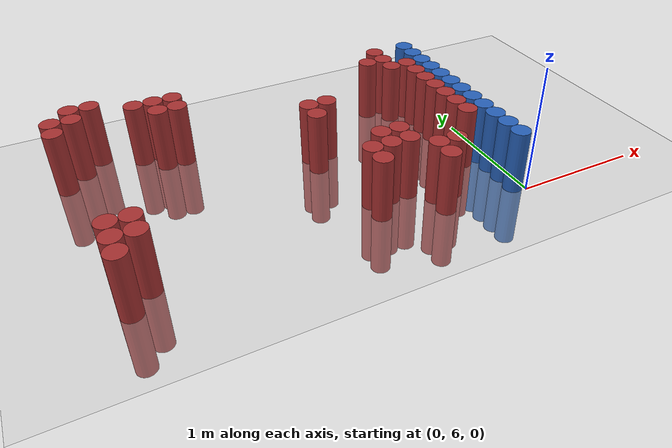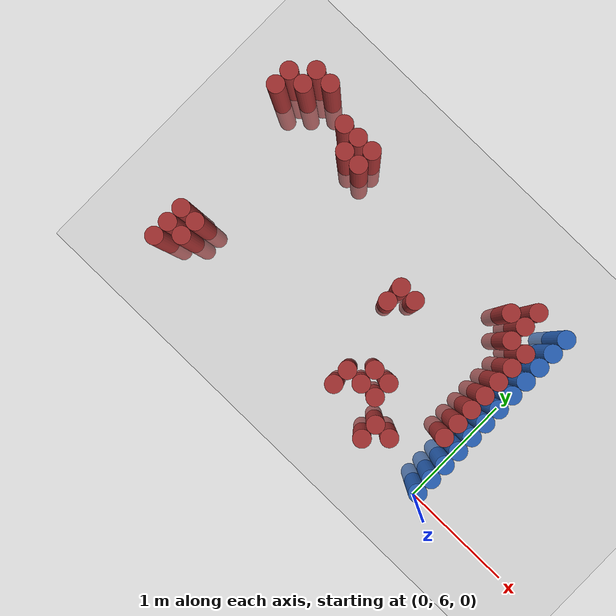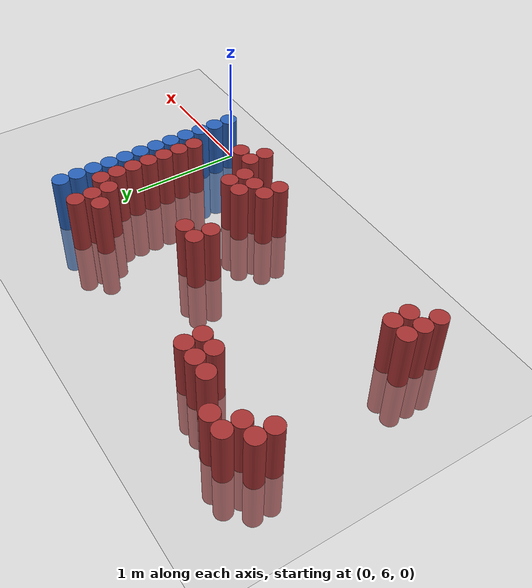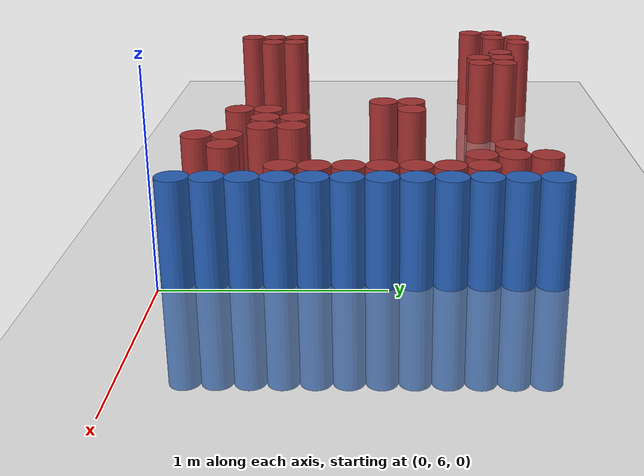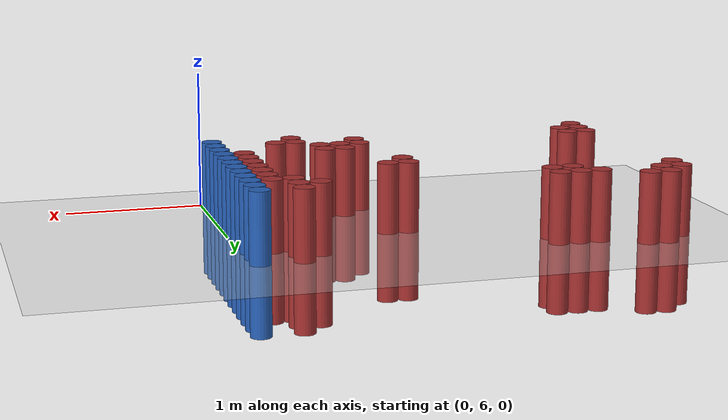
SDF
<sdf version="1.6">
 <world name="default">
  <model name="ground_plane">
   <static>1</static>
   <link name="link">
    <collision name="collision">
     <geometry><plane><normal>0 0 1</normal><size>100 100</size></plane></geometry>
     <surface><friction><ode><mu>100</mu><mu2>50</mu2></ode></friction></surface>
    </collision>
    <visual name="visual">
     <cast_shadows>0</cast_shadows>
     <geometry><plane><normal>0 0 1</normal><size>100 100</size></plane></geometry>
     <material>
      <script><uri>file://media/materials/scripts/gazebo.material</uri><name>Gazebo/Grey</name></script>
     </material>
    </visual>
   </link>
  </model>
  <model name="unit_cylinder_220">
   <static>1</static>
   <pose>-3.075000 7.575000 0.000000 0.000000 0.000000 0.000000</pose>
   <link name="link">
    <inertial>
     <mass>1</mass>
     <inertia><ixx>0.145833</ixx><ixy>0</ixy><ixz>0</ixz><iyy>0.145833</iyy><iyz>0</iyz><izz>0.125</izz></inertia>
    </inertial>
    <collision name="collision">
     <geometry><cylinder><radius>0.075000</radius><length>1</length></cylinder></geometry>
    </collision>
    <visual name="visual">
     <geometry><cylinder><radius>0.075000</radius><length>1</length></cylinder></geometry>
     <material>
      <ambient>0.648000 0.192000 0.192000 1</ambient>
      <diffuse>0.648000 0.192000 0.192000 1</diffuse>
     </material>
     <material>
      <script><name>Gazebo/Grey</name><uri>file://media/materials/scripts/gazebo.material</uri></script>
     </material>
    </visual>
   </link>
  </model>
  <model name="unit_cylinder_221">
   <static>1</static>
   <pose>-3.075000 7.725000 0.000000 0.000000 0.000000 0.000000</pose>
   <link name="link">
    <inertial>
     <mass>1</mass>
     <inertia><ixx>0.145833</ixx><ixy>0</ixy><ixz>0</ixz><iyy>0.145833</iyy><iyz>0</iyz><izz>0.125</izz></inertia>
    </inertial>
    <collision name="collision">
     <geometry><cylinder><radius>0.075000</radius><length>1</length></cylinder></geometry>
    </collision>
    <visual name="visual">
     <geometry><cylinder><radius>0.075000</radius><length>1</length></cylinder></geometry>
     <material>
      <ambient>0.648000 0.192000 0.192000 1</ambient>
      <diffuse>0.648000 0.192000 0.192000 1</diffuse>
     </material>
     <material>
      <script><name>Gazebo/Grey</name><uri>file://media/materials/scripts/gazebo.material</uri></script>
     </material>
    </visual>
   </link>
  </model>
  <model name="unit_cylinder_225">
   <static>1</static>
   <pose>-2.925000 6.075000 0.000000 0.000000 0.000000 0.000000</pose>
   <link name="link">
    <inertial>
     <mass>1</mass>
     <inertia><ixx>0.145833</ixx><ixy>0</ixy><ixz>0</ixz><iyy>0.145833</iyy><iyz>0</iyz><izz>0.125</izz></inertia>
    </inertial>
    <collision name="collision">
     <geometry><cylinder><radius>0.075000</radius><length>1</length></cylinder></geometry>
    </collision>
    <visual name="visual">
     <geometry><cylinder><radius>0.075000</radius><length>1</length></cylinder></geometry>
     <material>
      <ambient>0.648000 0.192000 0.192000 1</ambient>
      <diffuse>0.648000 0.192000 0.192000 1</diffuse>
     </material>
     <material>
      <script><name>Gazebo/Grey</name><uri>file://media/materials/scripts/gazebo.material</uri></script>
     </material>
    </visual>
   </link>
  </model>
  <model name="unit_cylinder_226">
   <static>1</static>
   <pose>-2.925000 6.225000 0.000000 0.000000 0.000000 0.000000</pose>
   <link name="link">
    <inertial>
     <mass>1</mass>
     <inertia><ixx>0.145833</ixx><ixy>0</ixy><ixz>0</ixz><iyy>0.145833</iyy><iyz>0</iyz><izz>0.125</izz></inertia>
    </inertial>
    <collision name="collision">
     <geometry><cylinder><radius>0.075000</radius><length>1</length></cylinder></geometry>
    </collision>
    <visual name="visual">
     <geometry><cylinder><radius>0.075000</radius><length>1</length></cylinder></geometry>
     <material>
      <ambient>0.648000 0.192000 0.192000 1</ambient>
      <diffuse>0.648000 0.192000 0.192000 1</diffuse>
     </material>
     <material>
      <script><name>Gazebo/Grey</name><uri>file://media/materials/scripts/gazebo.material</uri></script>
     </material>
    </visual>
   </link>
  </model>
  <model name="unit_cylinder_227">
   <static>1</static>
   <pose>-2.925000 6.375000 0.000000 0.000000 0.000000 0.000000</pose>
   <link name="link">
    <inertial>
     <mass>1</mass>
     <inertia><ixx>0.145833</ixx><ixy>0</ixy><ixz>0</ixz><iyy>0.145833</iyy><iyz>0</iyz><izz>0.125</izz></inertia>
    </inertial>
    <collision name="collision">
     <geometry><cylinder><radius>0.075000</radius><length>1</length></cylinder></geometry>
    </collision>
    <visual name="visual">
     <geometry><cylinder><radius>0.075000</radius><length>1</length></cylinder></geometry>
     <material>
      <ambient>0.648000 0.192000 0.192000 1</ambient>
      <diffuse>0.648000 0.192000 0.192000 1</diffuse>
     </material>
     <material>
      <script><name>Gazebo/Grey</name><uri>file://media/materials/scripts/gazebo.material</uri></script>
     </material>
    </visual>
   </link>
  </model>
  <model name="unit_cylinder_228">
   <static>1</static>
   <pose>-2.925000 7.725000 0.000000 0.000000 0.000000 0.000000</pose>
   <link name="link">
    <inertial>
     <mass>1</mass>
     <inertia><ixx>0.145833</ixx><ixy>0</ixy><ixz>0</ixz><iyy>0.145833</iyy><iyz>0</iyz><izz>0.125</izz></inertia>
    </inertial>
    <collision name="collision">
     <geometry><cylinder><radius>0.075000</radius><length>1</length></cylinder></geometry>
    </collision>
    <visual name="visual">
     <geometry><cylinder><radius>0.075000</radius><length>1</length></cylinder></geometry>
     <material>
      <ambient>0.648000 0.192000 0.192000 1</ambient>
      <diffuse>0.648000 0.192000 0.192000 1</diffuse>
     </material>
     <material>
      <script><name>Gazebo/Grey</name><uri>file://media/materials/scripts/gazebo.material</uri></script>
     </material>
    </visual>
   </link>
  </model>
  <model name="unit_cylinder_229">
   <static>1</static>
   <pose>-2.925000 7.875000 0.000000 0.000000 0.000000 0.000000</pose>
   <link name="link">
    <inertial>
     <mass>1</mass>
     <inertia><ixx>0.145833</ixx><ixy>0</ixy><ixz>0</ixz><iyy>0.145833</iyy><iyz>0</iyz><izz>0.125</izz></inertia>
    </inertial>
    <collision name="collision">
     <geometry><cylinder><radius>0.075000</radius><length>1</length></cylinder></geometry>
    </collision>
    <visual name="visual">
     <geometry><cylinder><radius>0.075000</radius><length>1</length></cylinder></geometry>
     <material>
      <ambient>0.648000 0.192000 0.192000 1</ambient>
      <diffuse>0.648000 0.192000 0.192000 1</diffuse>
     </material>
     <material>
      <script><name>Gazebo/Grey</name><uri>file://media/materials/scripts/gazebo.material</uri></script>
     </material>
    </visual>
   </link>
  </model>
  <model name="unit_cylinder_234">
   <static>1</static>
   <pose>-2.775000 6.225000 0.000000 0.000000 0.000000 0.000000</pose>
   <link name="link">
    <inertial>
     <mass>1</mass>
     <inertia><ixx>0.145833</ixx><ixy>0</ixy><ixz>0</ixz><iyy>0.145833</iyy><iyz>0</iyz><izz>0.125</izz></inertia>
    </inertial>
    <collision name="collision">
     <geometry><cylinder><radius>0.075000</radius><length>1</length></cylinder></geometry>
    </collision>
    <visual name="visual">
     <geometry><cylinder><radius>0.075000</radius><length>1</length></cylinder></geometry>
     <material>
      <ambient>0.648000 0.192000 0.192000 1</ambient>
      <diffuse>0.648000 0.192000 0.192000 1</diffuse>
     </material>
     <material>
      <script><name>Gazebo/Grey</name><uri>file://media/materials/scripts/gazebo.material</uri></script>
     </material>
    </visual>
   </link>
  </model>
  <model name="unit_cylinder_235">
   <static>1</static>
   <pose>-2.775000 6.375000 0.000000 0.000000 0.000000 0.000000</pose>
   <link name="link">
    <inertial>
     <mass>1</mass>
     <inertia><ixx>0.145833</ixx><ixy>0</ixy><ixz>0</ixz><iyy>0.145833</iyy><iyz>0</iyz><izz>0.125</izz></inertia>
    </inertial>
    <collision name="collision">
     <geometry><cylinder><radius>0.075000</radius><length>1</length></cylinder></geometry>
    </collision>
    <visual name="visual">
     <geometry><cylinder><radius>0.075000</radius><length>1</length></cylinder></geometry>
     <material>
      <ambient>0.648000 0.192000 0.192000 1</ambient>
      <diffuse>0.648000 0.192000 0.192000 1</diffuse>
     </material>
     <material>
      <script><name>Gazebo/Grey</name><uri>file://media/materials/scripts/gazebo.material</uri></script>
     </material>
    </visual>
   </link>
  </model>
  <model name="unit_cylinder_236">
   <static>1</static>
   <pose>-2.775000 7.875000 0.000000 0.000000 0.000000 0.000000</pose>
   <link name="link">
    <inertial>
     <mass>1</mass>
     <inertia><ixx>0.145833</ixx><ixy>0</ixy><ixz>0</ixz><iyy>0.145833</iyy><iyz>0</iyz><izz>0.125</izz></inertia>
    </inertial>
    <collision name="collision">
     <geometry><cylinder><radius>0.075000</radius><length>1</length></cylinder></geometry>
    </collision>
    <visual name="visual">
     <geometry><cylinder><radius>0.075000</radius><length>1</length></cylinder></geometry>
     <material>
      <ambient>0.648000 0.192000 0.192000 1</ambient>
      <diffuse>0.648000 0.192000 0.192000 1</diffuse>
     </material>
     <material>
      <script><name>Gazebo/Grey</name><uri>file://media/materials/scripts/gazebo.material</uri></script>
     </material>
    </visual>
   </link>
  </model>
  <model name="unit_cylinder_246">
   <static>1</static>
   <pose>-2.475000 7.725000 0.000000 0.000000 0.000000 0.000000</pose>
   <link name="link">
    <inertial>
     <mass>1</mass>
     <inertia><ixx>0.145833</ixx><ixy>0</ixy><ixz>0</ixz><iyy>0.145833</iyy><iyz>0</iyz><izz>0.125</izz></inertia>
    </inertial>
    <collision name="collision">
     <geometry><cylinder><radius>0.075000</radius><length>1</length></cylinder></geometry>
    </collision>
    <visual name="visual">
     <geometry><cylinder><radius>0.075000</radius><length>1</length></cylinder></geometry>
     <material>
      <ambient>0.648000 0.192000 0.192000 1</ambient>
      <diffuse>0.648000 0.192000 0.192000 1</diffuse>
     </material>
     <material>
      <script><name>Gazebo/Grey</name><uri>file://media/materials/scripts/gazebo.material</uri></script>
     </material>
    </visual>
   </link>
  </model>
  <model name="unit_cylinder_249">
   <static>1</static>
   <pose>-2.325000 7.575000 0.000000 0.000000 0.000000 0.000000</pose>
   <link name="link">
    <inertial>
     <mass>1</mass>
     <inertia><ixx>0.145833</ixx><ixy>0</ixy><ixz>0</ixz><iyy>0.145833</iyy><iyz>0</iyz><izz>0.125</izz></inertia>
    </inertial>
    <collision name="collision">
     <geometry><cylinder><radius>0.075000</radius><length>1</length></cylinder></geometry>
    </collision>
    <visual name="visual">
     <geometry><cylinder><radius>0.075000</radius><length>1</length></cylinder></geometry>
     <material>
      <ambient>0.648000 0.192000 0.192000 1</ambient>
      <diffuse>0.648000 0.192000 0.192000 1</diffuse>
     </material>
     <material>
      <script><name>Gazebo/Grey</name><uri>file://media/materials/scripts/gazebo.material</uri></script>
     </material>
    </visual>
   </link>
  </model>
  <model name="unit_cylinder_250">
   <static>1</static>
   <pose>-2.325000 7.725000 0.000000 0.000000 0.000000 0.000000</pose>
   <link name="link">
    <inertial>
     <mass>1</mass>
     <inertia><ixx>0.145833</ixx><ixy>0</ixy><ixz>0</ixz><iyy>0.145833</iyy><iyz>0</iyz><izz>0.125</izz></inertia>
    </inertial>
    <collision name="collision">
     <geometry><cylinder><radius>0.075000</radius><length>1</length></cylinder></geometry>
    </collision>
    <visual name="visual">
     <geometry><cylinder><radius>0.075000</radius><length>1</length></cylinder></geometry>
     <material>
      <ambient>0.648000 0.192000 0.192000 1</ambient>
      <diffuse>0.648000 0.192000 0.192000 1</diffuse>
     </material>
     <material>
      <script><name>Gazebo/Grey</name><uri>file://media/materials/scripts/gazebo.material</uri></script>
     </material>
    </visual>
   </link>
  </model>
  <model name="unit_cylinder_252">
   <static>1</static>
   <pose>-2.175000 7.575000 0.000000 0.000000 0.000000 0.000000</pose>
   <link name="link">
    <inertial>
     <mass>1</mass>
     <inertia><ixx>0.145833</ixx><ixy>0</ixy><ixz>0</ixz><iyy>0.145833</iyy><iyz>0</iyz><izz>0.125</izz></inertia>
    </inertial>
    <collision name="collision">
     <geometry><cylinder><radius>0.075000</radius><length>1</length></cylinder></geometry>
    </collision>
    <visual name="visual">
     <geometry><cylinder><radius>0.075000</radius><length>1</length></cylinder></geometry>
     <material>
      <ambient>0.648000 0.192000 0.192000 1</ambient>
      <diffuse>0.648000 0.192000 0.192000 1</diffuse>
     </material>
     <material>
      <script><name>Gazebo/Grey</name><uri>file://media/materials/scripts/gazebo.material</uri></script>
     </material>
    </visual>
   </link>
  </model>
  <model name="unit_cylinder_253">
   <static>1</static>
   <pose>-2.175000 7.725000 0.000000 0.000000 0.000000 0.000000</pose>
   <link name="link">
    <inertial>
     <mass>1</mass>
     <inertia><ixx>0.145833</ixx><ixy>0</ixy><ixz>0</ixz><iyy>0.145833</iyy><iyz>0</iyz><izz>0.125</izz></inertia>
    </inertial>
    <collision name="collision">
     <geometry><cylinder><radius>0.075000</radius><length>1</length></cylinder></geometry>
    </collision>
    <visual name="visual">
     <geometry><cylinder><radius>0.075000</radius><length>1</length></cylinder></geometry>
     <material>
      <ambient>0.648000 0.192000 0.192000 1</ambient>
      <diffuse>0.648000 0.192000 0.192000 1</diffuse>
     </material>
     <material>
      <script><name>Gazebo/Grey</name><uri>file://media/materials/scripts/gazebo.material</uri></script>
     </material>
    </visual>
   </link>
  </model>
  <model name="unit_cylinder_268">
   <static>1</static>
   <pose>-1.275000 6.975000 0.000000 0.000000 0.000000 0.000000</pose>
   <link name="link">
    <inertial>
     <mass>1</mass>
     <inertia><ixx>0.145833</ixx><ixy>0</ixy><ixz>0</ixz><iyy>0.145833</iyy><iyz>0</iyz><izz>0.125</izz></inertia>
    </inertial>
    <collision name="collision">
     <geometry><cylinder><radius>0.075000</radius><length>1</length></cylinder></geometry>
    </collision>
    <visual name="visual">
     <geometry><cylinder><radius>0.075000</radius><length>1</length></cylinder></geometry>
     <material>
      <ambient>0.648000 0.192000 0.192000 1</ambient>
      <diffuse>0.648000 0.192000 0.192000 1</diffuse>
     </material>
     <material>
      <script><name>Gazebo/Grey</name><uri>file://media/materials/scripts/gazebo.material</uri></script>
     </material>
    </visual>
   </link>
  </model>
  <model name="unit_cylinder_269">
   <static>1</static>
   <pose>-1.275000 7.125000 0.000000 0.000000 0.000000 0.000000</pose>
   <link name="link">
    <inertial>
     <mass>1</mass>
     <inertia><ixx>0.145833</ixx><ixy>0</ixy><ixz>0</ixz><iyy>0.145833</iyy><iyz>0</iyz><izz>0.125</izz></inertia>
    </inertial>
    <collision name="collision">
     <geometry><cylinder><radius>0.075000</radius><length>1</length></cylinder></geometry>
    </collision>
    <visual name="visual">
     <geometry><cylinder><radius>0.075000</radius><length>1</length></cylinder></geometry>
     <material>
      <ambient>0.648000 0.192000 0.192000 1</ambient>
      <diffuse>0.648000 0.192000 0.192000 1</diffuse>
     </material>
     <material>
      <script><name>Gazebo/Grey</name><uri>file://media/materials/scripts/gazebo.material</uri></script>
     </material>
    </visual>
   </link>
  </model>
  <model name="unit_cylinder_270">
   <static>1</static>
   <pose>-1.125000 6.225000 0.000000 0.000000 0.000000 0.000000</pose>
   <link name="link">
    <inertial>
     <mass>1</mass>
     <inertia><ixx>0.145833</ixx><ixy>0</ixy><ixz>0</ixz><iyy>0.145833</iyy><iyz>0</iyz><izz>0.125</izz></inertia>
    </inertial>
    <collision name="collision">
     <geometry><cylinder><radius>0.075000</radius><length>1</length></cylinder></geometry>
    </collision>
    <visual name="visual">
     <geometry><cylinder><radius>0.075000</radius><length>1</length></cylinder></geometry>
     <material>
      <ambient>0.648000 0.192000 0.192000 1</ambient>
      <diffuse>0.648000 0.192000 0.192000 1</diffuse>
     </material>
     <material>
      <script><name>Gazebo/Grey</name><uri>file://media/materials/scripts/gazebo.material</uri></script>
     </material>
    </visual>
   </link>
  </model>
  <model name="unit_cylinder_271">
   <static>1</static>
   <pose>-1.125000 6.375000 0.000000 0.000000 0.000000 0.000000</pose>
   <link name="link">
    <inertial>
     <mass>1</mass>
     <inertia><ixx>0.145833</ixx><ixy>0</ixy><ixz>0</ixz><iyy>0.145833</iyy><iyz>0</iyz><izz>0.125</izz></inertia>
    </inertial>
    <collision name="collision">
     <geometry><cylinder><radius>0.075000</radius><length>1</length></cylinder></geometry>
    </collision>
    <visual name="visual">
     <geometry><cylinder><radius>0.075000</radius><length>1</length></cylinder></geometry>
     <material>
      <ambient>0.648000 0.192000 0.192000 1</ambient>
      <diffuse>0.648000 0.192000 0.192000 1</diffuse>
     </material>
     <material>
      <script><name>Gazebo/Grey</name><uri>file://media/materials/scripts/gazebo.material</uri></script>
     </material>
    </visual>
   </link>
  </model>
  <model name="unit_cylinder_272">
   <static>1</static>
   <pose>-1.125000 7.125000 0.000000 0.000000 0.000000 0.000000</pose>
   <link name="link">
    <inertial>
     <mass>1</mass>
     <inertia><ixx>0.145833</ixx><ixy>0</ixy><ixz>0</ixz><iyy>0.145833</iyy><iyz>0</iyz><izz>0.125</izz></inertia>
    </inertial>
    <collision name="collision">
     <geometry><cylinder><radius>0.075000</radius><length>1</length></cylinder></geometry>
    </collision>
    <visual name="visual">
     <geometry><cylinder><radius>0.075000</radius><length>1</length></cylinder></geometry>
     <material>
      <ambient>0.648000 0.192000 0.192000 1</ambient>
      <diffuse>0.648000 0.192000 0.192000 1</diffuse>
     </material>
     <material>
      <script><name>Gazebo/Grey</name><uri>file://media/materials/scripts/gazebo.material</uri></script>
     </material>
    </visual>
   </link>
  </model>
  <model name="unit_cylinder_274">
   <static>1</static>
   <pose>-0.975000 6.375000 0.000000 0.000000 0.000000 0.000000</pose>
   <link name="link">
    <inertial>
     <mass>1</mass>
     <inertia><ixx>0.145833</ixx><ixy>0</ixy><ixz>0</ixz><iyy>0.145833</iyy><iyz>0</iyz><izz>0.125</izz></inertia>
    </inertial>
    <collision name="collision">
     <geometry><cylinder><radius>0.075000</radius><length>1</length></cylinder></geometry>
    </collision>
    <visual name="visual">
     <geometry><cylinder><radius>0.075000</radius><length>1</length></cylinder></geometry>
     <material>
      <ambient>0.648000 0.192000 0.192000 1</ambient>
      <diffuse>0.648000 0.192000 0.192000 1</diffuse>
     </material>
     <material>
      <script><name>Gazebo/Grey</name><uri>file://media/materials/scripts/gazebo.material</uri></script>
     </material>
    </visual>
   </link>
  </model>
  <model name="unit_cylinder_275">
   <static>1</static>
   <pose>-0.975000 6.525000 0.000000 0.000000 0.000000 0.000000</pose>
   <link name="link">
    <inertial>
     <mass>1</mass>
     <inertia><ixx>0.145833</ixx><ixy>0</ixy><ixz>0</ixz><iyy>0.145833</iyy><iyz>0</iyz><izz>0.125</izz></inertia>
    </inertial>
    <collision name="collision">
     <geometry><cylinder><radius>0.075000</radius><length>1</length></cylinder></geometry>
    </collision>
    <visual name="visual">
     <geometry><cylinder><radius>0.075000</radius><length>1</length></cylinder></geometry>
     <material>
      <ambient>0.648000 0.192000 0.192000 1</ambient>
      <diffuse>0.648000 0.192000 0.192000 1</diffuse>
     </material>
     <material>
      <script><name>Gazebo/Grey</name><uri>file://media/materials/scripts/gazebo.material</uri></script>
     </material>
    </visual>
   </link>
  </model>
  <model name="unit_cylinder_280">
   <static>1</static>
   <pose>-0.825000 6.375000 0.000000 0.000000 0.000000 0.000000</pose>
   <link name="link">
    <inertial>
     <mass>1</mass>
     <inertia><ixx>0.145833</ixx><ixy>0</ixy><ixz>0</ixz><iyy>0.145833</iyy><iyz>0</iyz><izz>0.125</izz></inertia>
    </inertial>
    <collision name="collision">
     <geometry><cylinder><radius>0.075000</radius><length>1</length></cylinder></geometry>
    </collision>
    <visual name="visual">
     <geometry><cylinder><radius>0.075000</radius><length>1</length></cylinder></geometry>
     <material>
      <ambient>0.648000 0.192000 0.192000 1</ambient>
      <diffuse>0.648000 0.192000 0.192000 1</diffuse>
     </material>
     <material>
      <script><name>Gazebo/Grey</name><uri>file://media/materials/scripts/gazebo.material</uri></script>
     </material>
    </visual>
   </link>
  </model>
  <model name="unit_cylinder_281">
   <static>1</static>
   <pose>-0.825000 6.525000 0.000000 0.000000 0.000000 0.000000</pose>
   <link name="link">
    <inertial>
     <mass>1</mass>
     <inertia><ixx>0.145833</ixx><ixy>0</ixy><ixz>0</ixz><iyy>0.145833</iyy><iyz>0</iyz><izz>0.125</izz></inertia>
    </inertial>
    <collision name="collision">
     <geometry><cylinder><radius>0.075000</radius><length>1</length></cylinder></geometry>
    </collision>
    <visual name="visual">
     <geometry><cylinder><radius>0.075000</radius><length>1</length></cylinder></geometry>
     <material>
      <ambient>0.648000 0.192000 0.192000 1</ambient>
      <diffuse>0.648000 0.192000 0.192000 1</diffuse>
     </material>
     <material>
      <script><name>Gazebo/Grey</name><uri>file://media/materials/scripts/gazebo.material</uri></script>
     </material>
    </visual>
   </link>
  </model>
  <model name="unit_cylinder_285">
   <static>1</static>
   <pose>-0.675000 6.075000 0.000000 0.000000 0.000000 0.000000</pose>
   <link name="link">
    <inertial>
     <mass>1</mass>
     <inertia><ixx>0.145833</ixx><ixy>0</ixy><ixz>0</ixz><iyy>0.145833</iyy><iyz>0</iyz><izz>0.125</izz></inertia>
    </inertial>
    <collision name="collision">
     <geometry><cylinder><radius>0.075000</radius><length>1</length></cylinder></geometry>
    </collision>
    <visual name="visual">
     <geometry><cylinder><radius>0.075000</radius><length>1</length></cylinder></geometry>
     <material>
      <ambient>0.648000 0.192000 0.192000 1</ambient>
      <diffuse>0.648000 0.192000 0.192000 1</diffuse>
     </material>
     <material>
      <script><name>Gazebo/Grey</name><uri>file://media/materials/scripts/gazebo.material</uri></script>
     </material>
    </visual>
   </link>
  </model>
  <model name="unit_cylinder_286">
   <static>1</static>
   <pose>-0.675000 6.225000 0.000000 0.000000 0.000000 0.000000</pose>
   <link name="link">
    <inertial>
     <mass>1</mass>
     <inertia><ixx>0.145833</ixx><ixy>0</ixy><ixz>0</ixz><iyy>0.145833</iyy><iyz>0</iyz><izz>0.125</izz></inertia>
    </inertial>
    <collision name="collision">
     <geometry><cylinder><radius>0.075000</radius><length>1</length></cylinder></geometry>
    </collision>
    <visual name="visual">
     <geometry><cylinder><radius>0.075000</radius><length>1</length></cylinder></geometry>
     <material>
      <ambient>0.648000 0.192000 0.192000 1</ambient>
      <diffuse>0.648000 0.192000 0.192000 1</diffuse>
     </material>
     <material>
      <script><name>Gazebo/Grey</name><uri>file://media/materials/scripts/gazebo.material</uri></script>
     </material>
    </visual>
   </link>
  </model>
  <model name="unit_cylinder_288">
   <static>1</static>
   <pose>-0.525000 6.225000 0.000000 0.000000 0.000000 0.000000</pose>
   <link name="link">
    <inertial>
     <mass>1</mass>
     <inertia><ixx>0.145833</ixx><ixy>0</ixy><ixz>0</ixz><iyy>0.145833</iyy><iyz>0</iyz><izz>0.125</izz></inertia>
    </inertial>
    <collision name="collision">
     <geometry><cylinder><radius>0.075000</radius><length>1</length></cylinder></geometry>
    </collision>
    <visual name="visual">
     <geometry><cylinder><radius>0.075000</radius><length>1</length></cylinder></geometry>
     <material>
      <ambient>0.648000 0.192000 0.192000 1</ambient>
      <diffuse>0.648000 0.192000 0.192000 1</diffuse>
     </material>
     <material>
      <script><name>Gazebo/Grey</name><uri>file://media/materials/scripts/gazebo.material</uri></script>
     </material>
    </visual>
   </link>
  </model>
  <model name="unit_cylinder_289">
   <static>1</static>
   <pose>-0.525000 7.575000 0.000000 0.000000 0.000000 0.000000</pose>
   <link name="link">
    <inertial>
     <mass>1</mass>
     <inertia><ixx>0.145833</ixx><ixy>0</ixy><ixz>0</ixz><iyy>0.145833</iyy><iyz>0</iyz><izz>0.125</izz></inertia>
    </inertial>
    <collision name="collision">
     <geometry><cylinder><radius>0.075000</radius><length>1</length></cylinder></geometry>
    </collision>
    <visual name="visual">
     <geometry><cylinder><radius>0.075000</radius><length>1</length></cylinder></geometry>
     <material>
      <ambient>0.648000 0.192000 0.192000 1</ambient>
      <diffuse>0.648000 0.192000 0.192000 1</diffuse>
     </material>
     <material>
      <script><name>Gazebo/Grey</name><uri>file://media/materials/scripts/gazebo.material</uri></script>
     </material>
    </visual>
   </link>
  </model>
  <model name="unit_cylinder_295">
   <static>1</static>
   <pose>-0.375000 7.425000 0.000000 0.000000 0.000000 0.000000</pose>
   <link name="link">
    <inertial>
     <mass>1</mass>
     <inertia><ixx>0.145833</ixx><ixy>0</ixy><ixz>0</ixz><iyy>0.145833</iyy><iyz>0</iyz><izz>0.125</izz></inertia>
    </inertial>
    <collision name="collision">
     <geometry><cylinder><radius>0.075000</radius><length>1</length></cylinder></geometry>
    </collision>
    <visual name="visual">
     <geometry><cylinder><radius>0.075000</radius><length>1</length></cylinder></geometry>
     <material>
      <ambient>0.648000 0.192000 0.192000 1</ambient>
      <diffuse>0.648000 0.192000 0.192000 1</diffuse>
     </material>
     <material>
      <script><name>Gazebo/Grey</name><uri>file://media/materials/scripts/gazebo.material</uri></script>
     </material>
    </visual>
   </link>
  </model>
  <model name="unit_cylinder_296">
   <static>1</static>
   <pose>-0.375000 7.575000 0.000000 0.000000 0.000000 0.000000</pose>
   <link name="link">
    <inertial>
     <mass>1</mass>
     <inertia><ixx>0.145833</ixx><ixy>0</ixy><ixz>0</ixz><iyy>0.145833</iyy><iyz>0</iyz><izz>0.125</izz></inertia>
    </inertial>
    <collision name="collision">
     <geometry><cylinder><radius>0.075000</radius><length>1</length></cylinder></geometry>
    </collision>
    <visual name="visual">
     <geometry><cylinder><radius>0.075000</radius><length>1</length></cylinder></geometry>
     <material>
      <ambient>0.648000 0.192000 0.192000 1</ambient>
      <diffuse>0.648000 0.192000 0.192000 1</diffuse>
     </material>
     <material>
      <script><name>Gazebo/Grey</name><uri>file://media/materials/scripts/gazebo.material</uri></script>
     </material>
    </visual>
   </link>
  </model>
  <model name="unit_cylinder_297">
   <static>1</static>
   <pose>-0.375000 7.725000 0.000000 0.000000 0.000000 0.000000</pose>
   <link name="link">
    <inertial>
     <mass>1</mass>
     <inertia><ixx>0.145833</ixx><ixy>0</ixy><ixz>0</ixz><iyy>0.145833</iyy><iyz>0</iyz><izz>0.125</izz></inertia>
    </inertial>
    <collision name="collision">
     <geometry><cylinder><radius>0.075000</radius><length>1</length></cylinder></geometry>
    </collision>
    <visual name="visual">
     <geometry><cylinder><radius>0.075000</radius><length>1</length></cylinder></geometry>
     <material>
      <ambient>0.648000 0.192000 0.192000 1</ambient>
      <diffuse>0.648000 0.192000 0.192000 1</diffuse>
     </material>
     <material>
      <script><name>Gazebo/Grey</name><uri>file://media/materials/scripts/gazebo.material</uri></script>
     </material>
    </visual>
   </link>
  </model>
  <model name="unit_cylinder_307">
   <static>1</static>
   <pose>-0.225000 6.525000 0.000000 0.000000 0.000000 0.000000</pose>
   <link name="link">
    <inertial>
     <mass>1</mass>
     <inertia><ixx>0.145833</ixx><ixy>0</ixy><ixz>0</ixz><iyy>0.145833</iyy><iyz>0</iyz><izz>0.125</izz></inertia>
    </inertial>
    <collision name="collision">
     <geometry><cylinder><radius>0.075000</radius><length>1</length></cylinder></geometry>
    </collision>
    <visual name="visual">
     <geometry><cylinder><radius>0.075000</radius><length>1</length></cylinder></geometry>
     <material>
      <ambient>0.648000 0.192000 0.192000 1</ambient>
      <diffuse>0.648000 0.192000 0.192000 1</diffuse>
     </material>
     <material>
      <script><name>Gazebo/Grey</name><uri>file://media/materials/scripts/gazebo.material</uri></script>
     </material>
    </visual>
   </link>
  </model>
  <model name="unit_cylinder_308">
   <static>1</static>
   <pose>-0.225000 6.675000 0.000000 0.000000 0.000000 0.000000</pose>
   <link name="link">
    <inertial>
     <mass>1</mass>
     <inertia><ixx>0.145833</ixx><ixy>0</ixy><ixz>0</ixz><iyy>0.145833</iyy><iyz>0</iyz><izz>0.125</izz></inertia>
    </inertial>
    <collision name="collision">
     <geometry><cylinder><radius>0.075000</radius><length>1</length></cylinder></geometry>
    </collision>
    <visual name="visual">
     <geometry><cylinder><radius>0.075000</radius><length>1</length></cylinder></geometry>
     <material>
      <ambient>0.648000 0.192000 0.192000 1</ambient>
      <diffuse>0.648000 0.192000 0.192000 1</diffuse>
     </material>
     <material>
      <script><name>Gazebo/Grey</name><uri>file://media/materials/scripts/gazebo.material</uri></script>
     </material>
    </visual>
   </link>
  </model>
  <model name="unit_cylinder_309">
   <static>1</static>
   <pose>-0.225000 6.825000 0.000000 0.000000 0.000000 0.000000</pose>
   <link name="link">
    <inertial>
     <mass>1</mass>
     <inertia><ixx>0.145833</ixx><ixy>0</ixy><ixz>0</ixz><iyy>0.145833</iyy><iyz>0</iyz><izz>0.125</izz></inertia>
    </inertial>
    <collision name="collision">
     <geometry><cylinder><radius>0.075000</radius><length>1</length></cylinder></geometry>
    </collision>
    <visual name="visual">
     <geometry><cylinder><radius>0.075000</radius><length>1</length></cylinder></geometry>
     <material>
      <ambient>0.648000 0.192000 0.192000 1</ambient>
      <diffuse>0.648000 0.192000 0.192000 1</diffuse>
     </material>
     <material>
      <script><name>Gazebo/Grey</name><uri>file://media/materials/scripts/gazebo.material</uri></script>
     </material>
    </visual>
   </link>
  </model>
  <model name="unit_cylinder_310">
   <static>1</static>
   <pose>-0.225000 6.975000 0.000000 0.000000 0.000000 0.000000</pose>
   <link name="link">
    <inertial>
     <mass>1</mass>
     <inertia><ixx>0.145833</ixx><ixy>0</ixy><ixz>0</ixz><iyy>0.145833</iyy><iyz>0</iyz><izz>0.125</izz></inertia>
    </inertial>
    <collision name="collision">
     <geometry><cylinder><radius>0.075000</radius><length>1</length></cylinder></geometry>
    </collision>
    <visual name="visual">
     <geometry><cylinder><radius>0.075000</radius><length>1</length></cylinder></geometry>
     <material>
      <ambient>0.648000 0.192000 0.192000 1</ambient>
      <diffuse>0.648000 0.192000 0.192000 1</diffuse>
     </material>
     <material>
      <script><name>Gazebo/Grey</name><uri>file://media/materials/scripts/gazebo.material</uri></script>
     </material>
    </visual>
   </link>
  </model>
  <model name="unit_cylinder_311">
   <static>1</static>
   <pose>-0.225000 7.125000 0.000000 0.000000 0.000000 0.000000</pose>
   <link name="link">
    <inertial>
     <mass>1</mass>
     <inertia><ixx>0.145833</ixx><ixy>0</ixy><ixz>0</ixz><iyy>0.145833</iyy><iyz>0</iyz><izz>0.125</izz></inertia>
    </inertial>
    <collision name="collision">
     <geometry><cylinder><radius>0.075000</radius><length>1</length></cylinder></geometry>
    </collision>
    <visual name="visual">
     <geometry><cylinder><radius>0.075000</radius><length>1</length></cylinder></geometry>
     <material>
      <ambient>0.648000 0.192000 0.192000 1</ambient>
      <diffuse>0.648000 0.192000 0.192000 1</diffuse>
     </material>
     <material>
      <script><name>Gazebo/Grey</name><uri>file://media/materials/scripts/gazebo.material</uri></script>
     </material>
    </visual>
   </link>
  </model>
  <model name="unit_cylinder_312">
   <static>1</static>
   <pose>-0.225000 7.275000 0.000000 0.000000 0.000000 0.000000</pose>
   <link name="link">
    <inertial>
     <mass>1</mass>
     <inertia><ixx>0.145833</ixx><ixy>0</ixy><ixz>0</ixz><iyy>0.145833</iyy><iyz>0</iyz><izz>0.125</izz></inertia>
    </inertial>
    <collision name="collision">
     <geometry><cylinder><radius>0.075000</radius><length>1</length></cylinder></geometry>
    </collision>
    <visual name="visual">
     <geometry><cylinder><radius>0.075000</radius><length>1</length></cylinder></geometry>
     <material>
      <ambient>0.648000 0.192000 0.192000 1</ambient>
      <diffuse>0.648000 0.192000 0.192000 1</diffuse>
     </material>
     <material>
      <script><name>Gazebo/Grey</name><uri>file://media/materials/scripts/gazebo.material</uri></script>
     </material>
    </visual>
   </link>
  </model>
  <model name="unit_cylinder_313">
   <static>1</static>
   <pose>-0.225000 7.425000 0.000000 0.000000 0.000000 0.000000</pose>
   <link name="link">
    <inertial>
     <mass>1</mass>
     <inertia><ixx>0.145833</ixx><ixy>0</ixy><ixz>0</ixz><iyy>0.145833</iyy><iyz>0</iyz><izz>0.125</izz></inertia>
    </inertial>
    <collision name="collision">
     <geometry><cylinder><radius>0.075000</radius><length>1</length></cylinder></geometry>
    </collision>
    <visual name="visual">
     <geometry><cylinder><radius>0.075000</radius><length>1</length></cylinder></geometry>
     <material>
      <ambient>0.648000 0.192000 0.192000 1</ambient>
      <diffuse>0.648000 0.192000 0.192000 1</diffuse>
     </material>
     <material>
      <script><name>Gazebo/Grey</name><uri>file://media/materials/scripts/gazebo.material</uri></script>
     </material>
    </visual>
   </link>
  </model>
  <model name="unit_cylinder_327">
   <static>1</static>
   <pose>-0.075000 6.075000 0.000000 0.000000 0.000000 0.000000</pose>
   <link name="link">
    <inertial>
     <mass>1</mass>
     <inertia><ixx>0.145833</ixx><ixy>0</ixy><ixz>0</ixz><iyy>0.145833</iyy><iyz>0</iyz><izz>0.125</izz></inertia>
    </inertial>
    <collision name="collision">
     <geometry><cylinder><radius>0.075000</radius><length>1</length></cylinder></geometry>
    </collision>
    <visual name="visual">
     <geometry><cylinder><radius>0.075000</radius><length>1</length></cylinder></geometry>
     <material>
      <ambient>0.152000 0.379000 0.720000 1</ambient>
      <diffuse>0.152000 0.379000 0.720000 1</diffuse>
     </material>
     <material>
      <script><name>Gazebo/Grey</name><uri>file://media/materials/scripts/gazebo.material</uri></script>
     </material>
    </visual>
   </link>
  </model>
  <model name="unit_cylinder_328">
   <static>1</static>
   <pose>-0.075000 6.225000 0.000000 0.000000 0.000000 0.000000</pose>
   <link name="link">
    <inertial>
     <mass>1</mass>
     <inertia><ixx>0.145833</ixx><ixy>0</ixy><ixz>0</ixz><iyy>0.145833</iyy><iyz>0</iyz><izz>0.125</izz></inertia>
    </inertial>
    <collision name="collision">
     <geometry><cylinder><radius>0.075000</radius><length>1</length></cylinder></geometry>
    </collision>
    <visual name="visual">
     <geometry><cylinder><radius>0.075000</radius><length>1</length></cylinder></geometry>
     <material>
      <ambient>0.152000 0.379000 0.720000 1</ambient>
      <diffuse>0.152000 0.379000 0.720000 1</diffuse>
     </material>
     <material>
      <script><name>Gazebo/Grey</name><uri>file://media/materials/scripts/gazebo.material</uri></script>
     </material>
    </visual>
   </link>
  </model>
  <model name="unit_cylinder_329">
   <static>1</static>
   <pose>-0.075000 6.375000 0.000000 0.000000 0.000000 0.000000</pose>
   <link name="link">
    <inertial>
     <mass>1</mass>
     <inertia><ixx>0.145833</ixx><ixy>0</ixy><ixz>0</ixz><iyy>0.145833</iyy><iyz>0</iyz><izz>0.125</izz></inertia>
    </inertial>
    <collision name="collision">
     <geometry><cylinder><radius>0.075000</radius><length>1</length></cylinder></geometry>
    </collision>
    <visual name="visual">
     <geometry><cylinder><radius>0.075000</radius><length>1</length></cylinder></geometry>
     <material>
      <ambient>0.152000 0.379000 0.720000 1</ambient>
      <diffuse>0.152000 0.379000 0.720000 1</diffuse>
     </material>
     <material>
      <script><name>Gazebo/Grey</name><uri>file://media/materials/scripts/gazebo.material</uri></script>
     </material>
    </visual>
   </link>
  </model>
  <model name="unit_cylinder_330">
   <static>1</static>
   <pose>-0.075000 6.525000 0.000000 0.000000 0.000000 0.000000</pose>
   <link name="link">
    <inertial>
     <mass>1</mass>
     <inertia><ixx>0.145833</ixx><ixy>0</ixy><ixz>0</ixz><iyy>0.145833</iyy><iyz>0</iyz><izz>0.125</izz></inertia>
    </inertial>
    <collision name="collision">
     <geometry><cylinder><radius>0.075000</radius><length>1</length></cylinder></geometry>
    </collision>
    <visual name="visual">
     <geometry><cylinder><radius>0.075000</radius><length>1</length></cylinder></geometry>
     <material>
      <ambient>0.152000 0.379000 0.720000 1</ambient>
      <diffuse>0.152000 0.379000 0.720000 1</diffuse>
     </material>
     <material>
      <script><name>Gazebo/Grey</name><uri>file://media/materials/scripts/gazebo.material</uri></script>
     </material>
    </visual>
   </link>
  </model>
  <model name="unit_cylinder_331">
   <static>1</static>
   <pose>-0.075000 6.675000 0.000000 0.000000 0.000000 0.000000</pose>
   <link name="link">
    <inertial>
     <mass>1</mass>
     <inertia><ixx>0.145833</ixx><ixy>0</ixy><ixz>0</ixz><iyy>0.145833</iyy><iyz>0</iyz><izz>0.125</izz></inertia>
    </inertial>
    <collision name="collision">
     <geometry><cylinder><radius>0.075000</radius><length>1</length></cylinder></geometry>
    </collision>
    <visual name="visual">
     <geometry><cylinder><radius>0.075000</radius><length>1</length></cylinder></geometry>
     <material>
      <ambient>0.152000 0.379000 0.720000 1</ambient>
      <diffuse>0.152000 0.379000 0.720000 1</diffuse>
     </material>
     <material>
      <script><name>Gazebo/Grey</name><uri>file://media/materials/scripts/gazebo.material</uri></script>
     </material>
    </visual>
   </link>
  </model>
  <model name="unit_cylinder_332">
   <static>1</static>
   <pose>-0.075000 6.825000 0.000000 0.000000 0.000000 0.000000</pose>
   <link name="link">
    <inertial>
     <mass>1</mass>
     <inertia><ixx>0.145833</ixx><ixy>0</ixy><ixz>0</ixz><iyy>0.145833</iyy><iyz>0</iyz><izz>0.125</izz></inertia>
    </inertial>
    <collision name="collision">
     <geometry><cylinder><radius>0.075000</radius><length>1</length></cylinder></geometry>
    </collision>
    <visual name="visual">
     <geometry><cylinder><radius>0.075000</radius><length>1</length></cylinder></geometry>
     <material>
      <ambient>0.152000 0.379000 0.720000 1</ambient>
      <diffuse>0.152000 0.379000 0.720000 1</diffuse>
     </material>
     <material>
      <script><name>Gazebo/Grey</name><uri>file://media/materials/scripts/gazebo.material</uri></script>
     </material>
    </visual>
   </link>
  </model>
  <model name="unit_cylinder_333">
   <static>1</static>
   <pose>-0.075000 6.975000 0.000000 0.000000 0.000000 0.000000</pose>
   <link name="link">
    <inertial>
     <mass>1</mass>
     <inertia><ixx>0.145833</ixx><ixy>0</ixy><ixz>0</ixz><iyy>0.145833</iyy><iyz>0</iyz><izz>0.125</izz></inertia>
    </inertial>
    <collision name="collision">
     <geometry><cylinder><radius>0.075000</radius><length>1</length></cylinder></geometry>
    </collision>
    <visual name="visual">
     <geometry><cylinder><radius>0.075000</radius><length>1</length></cylinder></geometry>
     <material>
      <ambient>0.152000 0.379000 0.720000 1</ambient>
      <diffuse>0.152000 0.379000 0.720000 1</diffuse>
     </material>
     <material>
      <script><name>Gazebo/Grey</name><uri>file://media/materials/scripts/gazebo.material</uri></script>
     </material>
    </visual>
   </link>
  </model>
  <model name="unit_cylinder_334">
   <static>1</static>
   <pose>-0.075000 7.125000 0.000000 0.000000 0.000000 0.000000</pose>
   <link name="link">
    <inertial>
     <mass>1</mass>
     <inertia><ixx>0.145833</ixx><ixy>0</ixy><ixz>0</ixz><iyy>0.145833</iyy><iyz>0</iyz><izz>0.125</izz></inertia>
    </inertial>
    <collision name="collision">
     <geometry><cylinder><radius>0.075000</radius><length>1</length></cylinder></geometry>
    </collision>
    <visual name="visual">
     <geometry><cylinder><radius>0.075000</radius><length>1</length></cylinder></geometry>
     <material>
      <ambient>0.152000 0.379000 0.720000 1</ambient>
      <diffuse>0.152000 0.379000 0.720000 1</diffuse>
     </material>
     <material>
      <script><name>Gazebo/Grey</name><uri>file://media/materials/scripts/gazebo.material</uri></script>
     </material>
    </visual>
   </link>
  </model>
  <model name="unit_cylinder_335">
   <static>1</static>
   <pose>-0.075000 7.275000 0.000000 0.000000 0.000000 0.000000</pose>
   <link name="link">
    <inertial>
     <mass>1</mass>
     <inertia><ixx>0.145833</ixx><ixy>0</ixy><ixz>0</ixz><iyy>0.145833</iyy><iyz>0</iyz><izz>0.125</izz></inertia>
    </inertial>
    <collision name="collision">
     <geometry><cylinder><radius>0.075000</radius><length>1</length></cylinder></geometry>
    </collision>
    <visual name="visual">
     <geometry><cylinder><radius>0.075000</radius><length>1</length></cylinder></geometry>
     <material>
      <ambient>0.152000 0.379000 0.720000 1</ambient>
      <diffuse>0.152000 0.379000 0.720000 1</diffuse>
     </material>
     <material>
      <script><name>Gazebo/Grey</name><uri>file://media/materials/scripts/gazebo.material</uri></script>
     </material>
    </visual>
   </link>
  </model>
  <model name="unit_cylinder_336">
   <static>1</static>
   <pose>-0.075000 7.425000 0.000000 0.000000 0.000000 0.000000</pose>
   <link name="link">
    <inertial>
     <mass>1</mass>
     <inertia><ixx>0.145833</ixx><ixy>0</ixy><ixz>0</ixz><iyy>0.145833</iyy><iyz>0</iyz><izz>0.125</izz></inertia>
    </inertial>
    <collision name="collision">
     <geometry><cylinder><radius>0.075000</radius><length>1</length></cylinder></geometry>
    </collision>
    <visual name="visual">
     <geometry><cylinder><radius>0.075000</radius><length>1</length></cylinder></geometry>
     <material>
      <ambient>0.152000 0.379000 0.720000 1</ambient>
      <diffuse>0.152000 0.379000 0.720000 1</diffuse>
     </material>
     <material>
      <script><name>Gazebo/Grey</name><uri>file://media/materials/scripts/gazebo.material</uri></script>
     </material>
    </visual>
   </link>
  </model>
  <model name="unit_cylinder_337">
   <static>1</static>
   <pose>-0.075000 7.575000 0.000000 0.000000 0.000000 0.000000</pose>
   <link name="link">
    <inertial>
     <mass>1</mass>
     <inertia><ixx>0.145833</ixx><ixy>0</ixy><ixz>0</ixz><iyy>0.145833</iyy><iyz>0</iyz><izz>0.125</izz></inertia>
    </inertial>
    <collision name="collision">
     <geometry><cylinder><radius>0.075000</radius><length>1</length></cylinder></geometry>
    </collision>
    <visual name="visual">
     <geometry><cylinder><radius>0.075000</radius><length>1</length></cylinder></geometry>
     <material>
      <ambient>0.152000 0.379000 0.720000 1</ambient>
      <diffuse>0.152000 0.379000 0.720000 1</diffuse>
     </material>
     <material>
      <script><name>Gazebo/Grey</name><uri>file://media/materials/scripts/gazebo.material</uri></script>
     </material>
    </visual>
   </link>
  </model>
  <model name="unit_cylinder_338">
   <static>1</static>
   <pose>-0.075000 7.725000 0.000000 0.000000 0.000000 0.000000</pose>
   <link name="link">
    <inertial>
     <mass>1</mass>
     <inertia><ixx>0.145833</ixx><ixy>0</ixy><ixz>0</ixz><iyy>0.145833</iyy><iyz>0</iyz><izz>0.125</izz></inertia>
    </inertial>
    <collision name="collision">
     <geometry><cylinder><radius>0.075000</radius><length>1</length></cylinder></geometry>
    </collision>
    <visual name="visual">
     <geometry><cylinder><radius>0.075000</radius><length>1</length></cylinder></geometry>
     <material>
      <ambient>0.152000 0.379000 0.720000 1</ambient>
      <diffuse>0.152000 0.379000 0.720000 1</diffuse>
     </material>
     <material>
      <script><name>Gazebo/Grey</name><uri>file://media/materials/scripts/gazebo.material</uri></script>
     </material>
    </visual>
   </link>
  </model>
 </world>
</sdf>
